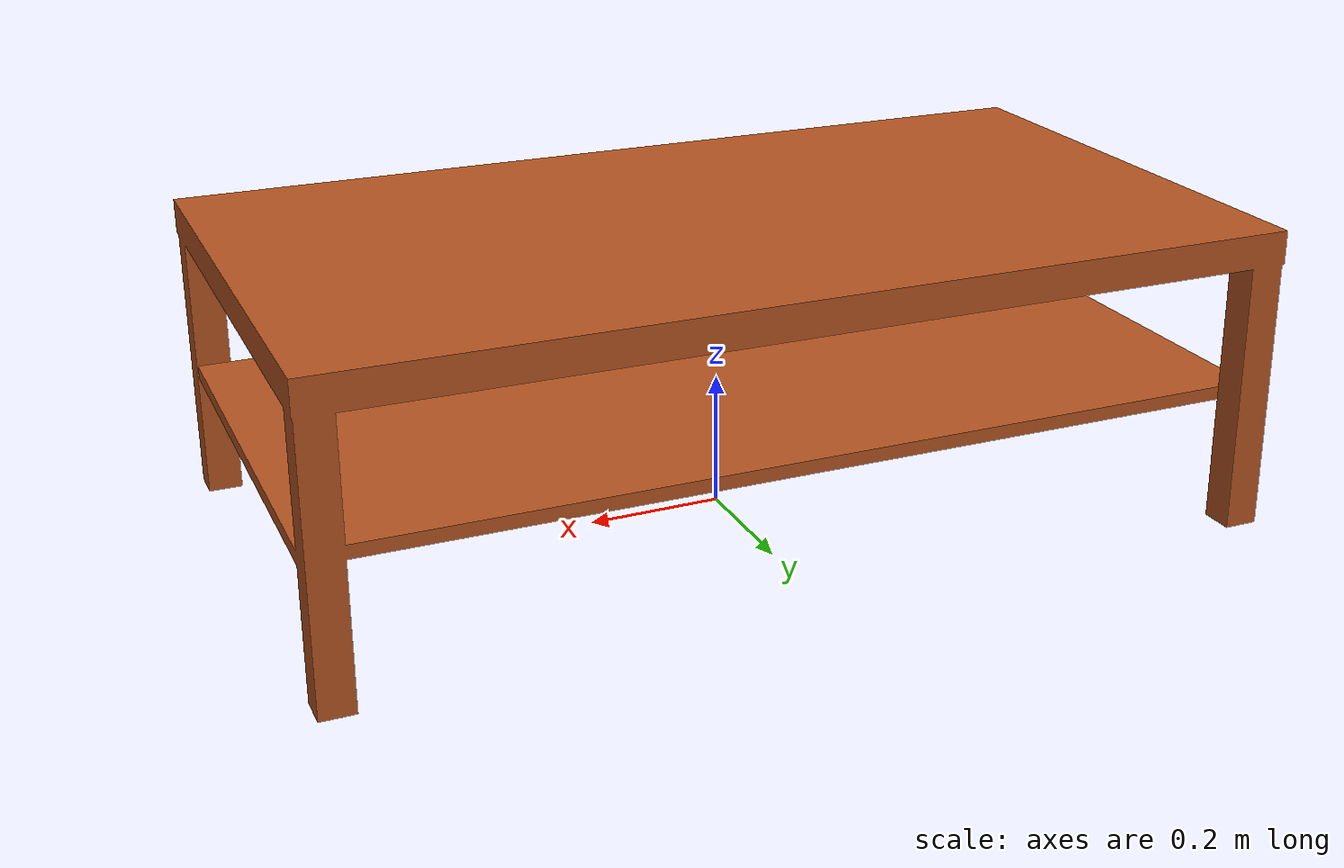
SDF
<?xml version='1.0'?>
<sdf version="1.4">
	<model name="livingroom_table">
		<static>1</static>
		<link name="link">
			<visual name="mesh">
				<geometry>
					<mesh>
						<uri>model://meshes/livingroom_table.dae</uri>
					</mesh>
				</geometry>
			</visual>
			<collision name="collider">
				<pose>0 0 0.225 0 0 0</pose>
				<geometry>
					<box>
						<size>1.4 0.78 0.45</size>
					</box>
				</geometry>
			</collision>
		</link>
	</model>
</sdf>
